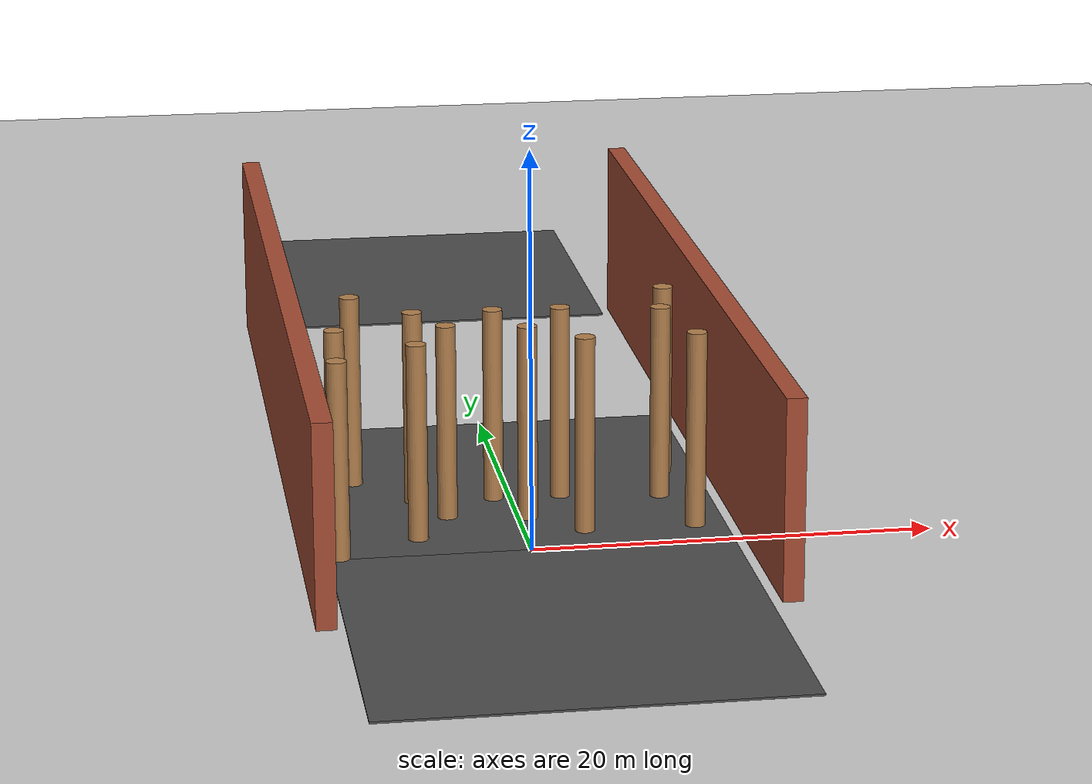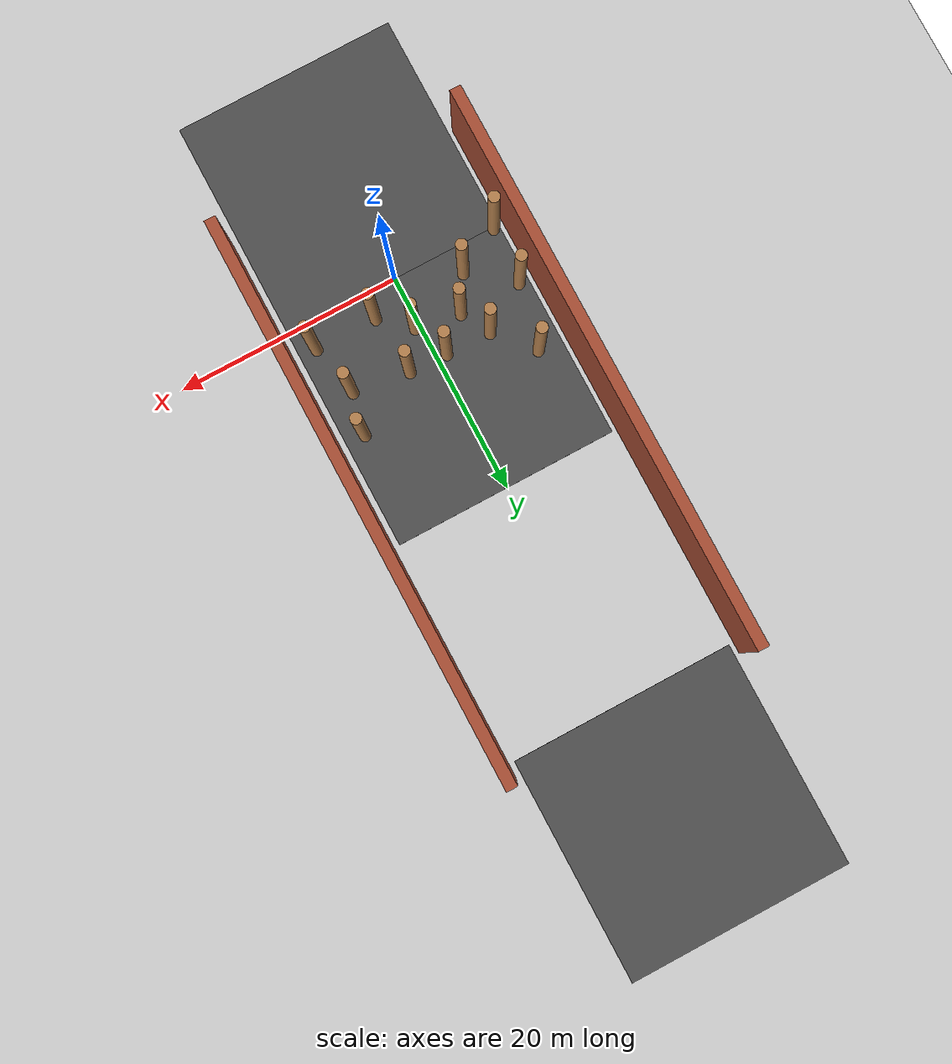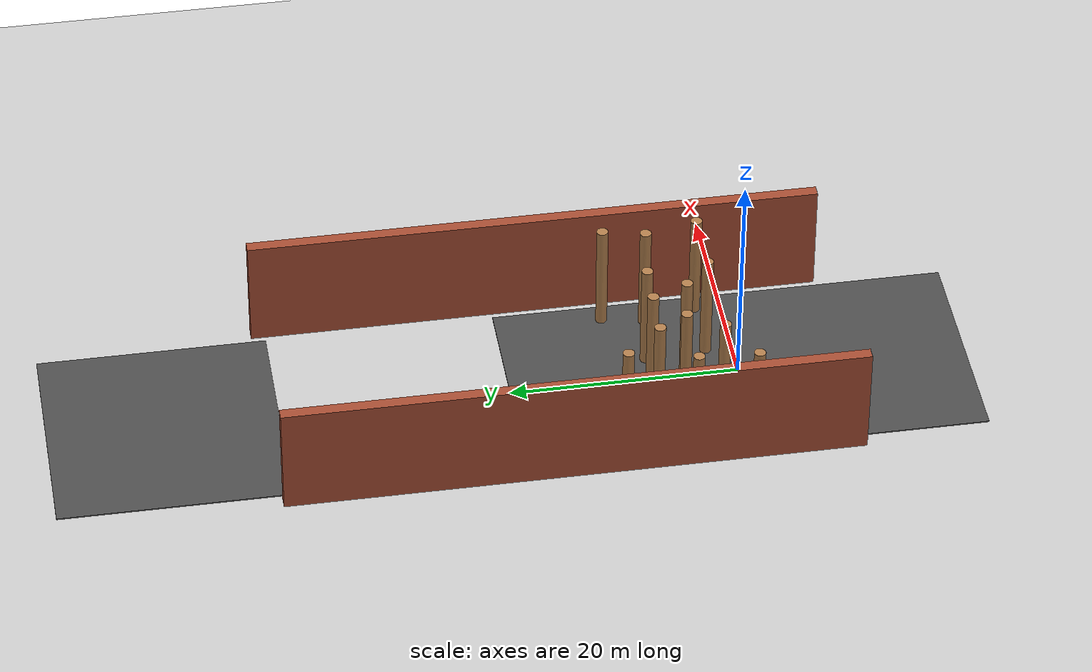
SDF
<sdf version="1.6">
 <world name="default">
  <model name="ground_plane">
   <static>1</static>
   <link name="link">
    <collision name="collision">
     <geometry><plane><normal>0 0 1</normal><size>100 100</size></plane></geometry>
     <surface><friction><ode><mu>100</mu><mu2>50</mu2></ode></friction></surface>
    </collision>
    <visual name="visual">
     <cast_shadows>0</cast_shadows>
     <geometry><plane><normal>0 0 1</normal><size>100 100</size></plane></geometry>
     <material>
      <script><uri>file://media/materials/scripts/gazebo.material</uri><name>Gazebo/Grey</name></script>
     </material>
    </visual>
   </link>
  </model>
  <model name="asphalt_plane_1">
   <static>1</static>
   <link name="link">
    <collision name="collision"><geometry><box><size>20 20 0.1</size></box></geometry></collision>
    <visual name="visual">
     <cast_shadows>0</cast_shadows>
     <geometry><box><size>20 20 0.1</size></box></geometry>
     <material>
      <script>
       <uri>model://asphalt_plane/materials/scripts</uri>
       <uri>model://asphalt_plane/materials/textures</uri>
       <name>vrc/asphalt</name>
      </script>
     </material>
    </visual>
   </link>
   <pose>0.098004 9.97829 0 0 -0 0</pose>
  </model>
  <model name="asphalt_plane_3">
   <static>1</static>
   <link name="link">
    <collision name="collision"><geometry><box><size>20 20 0.1</size></box></geometry></collision>
    <visual name="visual">
     <cast_shadows>0</cast_shadows>
     <geometry><box><size>20 20 0.1</size></box></geometry>
     <material>
      <script>
       <uri>model://asphalt_plane/materials/scripts</uri>
       <uri>model://asphalt_plane/materials/textures</uri>
       <name>vrc/asphalt</name>
      </script>
     </material>
    </visual>
   </link>
   <pose>0.085062 -9.98607 0 0 -0 0</pose>
  </model>
  <model name="train">
   <link name="link_0_clone">
    <pose>-2.21669 -8.91111 0.043478 0 -0 0</pose>
    <inertial>
     <mass>1000</mass>
     <inertia><ixx>0.145833</ixx><ixy>0</ixy><ixz>0</ixz><iyy>0.145833</iyy><iyz>0</iyz><izz>0.125</izz></inertia>
    </inertial>
    <visual name="visual">
     <pose>0 0 4.5 0 -0 0</pose>
     <geometry><cylinder><radius>0.5</radius><length>10</length></cylinder></geometry>
     <material>
      <lighting>1</lighting>
      <script><uri>file://media/materials/scripts/gazebo.material</uri><name>Gazebo/WoodFloor</name></script>
      <ambient>0.3 0.3 0.3 1</ambient>
      <diffuse>0.7 0.7 0.7 1</diffuse>
      <specular>0.01 0.01 0.01 1</specular>
      <emissive>0 0 0 1</emissive>
      <shader type="vertex"><normal_map>__default__</normal_map></shader>
     </material>
    </visual>
    <collision name="collision">
     <pose>0 0 4.5 0 -0 0</pose>
     <geometry><cylinder><radius>0.5</radius><length>10</length></cylinder></geometry>
     <surface>
      <friction>
       <ode><mu>1</mu><mu2>1</mu2><fdir1>0 0 0</fdir1><slip1>0</slip1><slip2>0</slip2></ode>
       <torsional>
        <coefficient>1</coefficient>
        <patch_radius>0</patch_radius>
        <surface_radius>0</surface_radius>
        <use_patch_radius>1</use_patch_radius>
        <ode><slip>0</slip></ode>
       </torsional>
      </friction>
      <bounce><restitution_coefficient>0</restitution_coefficient><threshold>1e+06</threshold></bounce>
      <contact>
       <collide_without_contact>0</collide_without_contact>
       <collide_without_contact_bitmask>1</collide_without_contact_bitmask>
       <collide_bitmask>1</collide_bitmask>
       <ode>
        <soft_cfm>0</soft_cfm>
        <soft_erp>0.2</soft_erp>
        <kp>1e+13</kp>
        <kd>1</kd>
        <max_vel>0.01</max_vel>
        <min_depth>0</min_depth>
       </ode>
       <bullet>
        <split_impulse>1</split_impulse>
        <split_impulse_penetration_threshold>-0.01</split_impulse_penetration_threshold>
        <soft_cfm>0</soft_cfm>
        <soft_erp>0.2</soft_erp>
        <kp>1e+13</kp>
        <kd>1</kd>
       </bullet>
      </contact>
     </surface>
    </collision>
   </link>
   <link name="link_0_clone_0">
    <pose>1.74011 -9.63468 0.043478 0 -0 0</pose>
    <inertial>
     <mass>1000</mass>
     <inertia><ixx>0.145833</ixx><ixy>0</ixy><ixz>0</ixz><iyy>0.145833</iyy><iyz>0</iyz><izz>0.125</izz></inertia>
    </inertial>
    <visual name="visual">
     <pose>0 0 4.5 0 -0 0</pose>
     <geometry><cylinder><radius>0.5</radius><length>10</length></cylinder></geometry>
     <material>
      <lighting>1</lighting>
      <script><uri>file://media/materials/scripts/gazebo.material</uri><name>Gazebo/WoodFloor</name></script>
      <ambient>0.3 0.3 0.3 1</ambient>
      <diffuse>0.7 0.7 0.7 1</diffuse>
      <specular>0.01 0.01 0.01 1</specular>
      <emissive>0 0 0 1</emissive>
      <shader type="vertex"><normal_map>__default__</normal_map></shader>
     </material>
    </visual>
    <collision name="collision">
     <pose>0 0 4.5 0 -0 0</pose>
     <geometry><cylinder><radius>0.5</radius><length>10</length></cylinder></geometry>
     <surface>
      <friction>
       <ode><mu>1</mu><mu2>1</mu2><fdir1>0 0 0</fdir1><slip1>0</slip1><slip2>0</slip2></ode>
       <torsional>
        <coefficient>1</coefficient>
        <patch_radius>0</patch_radius>
        <surface_radius>0</surface_radius>
        <use_patch_radius>1</use_patch_radius>
        <ode><slip>0</slip></ode>
       </torsional>
      </friction>
      <bounce><restitution_coefficient>0</restitution_coefficient><threshold>1e+06</threshold></bounce>
      <contact>
       <collide_without_contact>0</collide_without_contact>
       <collide_without_contact_bitmask>1</collide_without_contact_bitmask>
       <collide_bitmask>1</collide_bitmask>
       <ode>
        <soft_cfm>0</soft_cfm>
        <soft_erp>0.2</soft_erp>
        <kp>1e+13</kp>
        <kd>1</kd>
        <max_vel>0.01</max_vel>
        <min_depth>0</min_depth>
       </ode>
       <bullet>
        <split_impulse>1</split_impulse>
        <split_impulse_penetration_threshold>-0.01</split_impulse_penetration_threshold>
        <soft_cfm>0</soft_cfm>
        <soft_erp>0.2</soft_erp>
        <kp>1e+13</kp>
        <kd>1</kd>
       </bullet>
      </contact>
     </surface>
    </collision>
   </link>
   <link name="link_0_clone_0_clone_0">
    <pose>0.430305 -6.46355 0.043478 0 -0 0</pose>
    <inertial>
     <mass>1000</mass>
     <inertia><ixx>0.145833</ixx><ixy>0</ixy><ixz>0</ixz><iyy>0.145833</iyy><iyz>0</iyz><izz>0.125</izz></inertia>
    </inertial>
    <visual name="visual">
     <pose>0 0 4.5 0 -0 0</pose>
     <geometry><cylinder><radius>0.5</radius><length>10</length></cylinder></geometry>
     <material>
      <lighting>1</lighting>
      <script><uri>file://media/materials/scripts/gazebo.material</uri><name>Gazebo/WoodFloor</name></script>
      <ambient>0.3 0.3 0.3 1</ambient>
      <diffuse>0.7 0.7 0.7 1</diffuse>
      <specular>0.01 0.01 0.01 1</specular>
      <emissive>0 0 0 1</emissive>
      <shader type="vertex"><normal_map>__default__</normal_map></shader>
     </material>
    </visual>
    <collision name="collision">
     <pose>0 0 4.5 0 -0 0</pose>
     <geometry><cylinder><radius>0.5</radius><length>10</length></cylinder></geometry>
     <surface>
      <friction>
       <ode><mu>1</mu><mu2>1</mu2><fdir1>0 0 0</fdir1><slip1>0</slip1><slip2>0</slip2></ode>
       <torsional>
        <coefficient>1</coefficient>
        <patch_radius>0</patch_radius>
        <surface_radius>0</surface_radius>
        <use_patch_radius>1</use_patch_radius>
        <ode><slip>0</slip></ode>
       </torsional>
      </friction>
      <bounce><restitution_coefficient>0</restitution_coefficient><threshold>1e+06</threshold></bounce>
      <contact>
       <collide_without_contact>0</collide_without_contact>
       <collide_without_contact_bitmask>1</collide_without_contact_bitmask>
       <collide_bitmask>1</collide_bitmask>
       <ode>
        <soft_cfm>0</soft_cfm>
        <soft_erp>0.2</soft_erp>
        <kp>1e+13</kp>
        <kd>1</kd>
        <max_vel>0.01</max_vel>
        <min_depth>0</min_depth>
       </ode>
       <bullet>
        <split_impulse>1</split_impulse>
        <split_impulse_penetration_threshold>-0.01</split_impulse_penetration_threshold>
        <soft_cfm>0</soft_cfm>
        <soft_erp>0.2</soft_erp>
        <kp>1e+13</kp>
        <kd>1</kd>
       </bullet>
      </contact>
     </surface>
    </collision>
   </link>
   <link name="link_0_clone_0_clone_1">
    <pose>-3.60082 -6.33939 0.043478 0 -0 0</pose>
    <inertial>
     <mass>1000</mass>
     <inertia><ixx>0.145833</ixx><ixy>0</ixy><ixz>0</ixz><iyy>0.145833</iyy><iyz>0</iyz><izz>0.125</izz></inertia>
    </inertial>
    <visual name="visual">
     <pose>0 0 4.5 0 -0 0</pose>
     <geometry><cylinder><radius>0.5</radius><length>10</length></cylinder></geometry>
     <material>
      <lighting>1</lighting>
      <script><uri>file://media/materials/scripts/gazebo.material</uri><name>Gazebo/WoodFloor</name></script>
      <ambient>0.3 0.3 0.3 1</ambient>
      <diffuse>0.7 0.7 0.7 1</diffuse>
      <specular>0.01 0.01 0.01 1</specular>
      <emissive>0 0 0 1</emissive>
      <shader type="vertex"><normal_map>__default__</normal_map></shader>
     </material>
    </visual>
    <collision name="collision">
     <pose>0 0 4.5 0 -0 0</pose>
     <geometry><cylinder><radius>0.5</radius><length>10</length></cylinder></geometry>
     <surface>
      <friction>
       <ode><mu>1</mu><mu2>1</mu2><fdir1>0 0 0</fdir1><slip1>0</slip1><slip2>0</slip2></ode>
       <torsional>
        <coefficient>1</coefficient>
        <patch_radius>0</patch_radius>
        <surface_radius>0</surface_radius>
        <use_patch_radius>1</use_patch_radius>
        <ode><slip>0</slip></ode>
       </torsional>
      </friction>
      <bounce><restitution_coefficient>0</restitution_coefficient><threshold>1e+06</threshold></bounce>
      <contact>
       <collide_without_contact>0</collide_without_contact>
       <collide_without_contact_bitmask>1</collide_without_contact_bitmask>
       <collide_bitmask>1</collide_bitmask>
       <ode>
        <soft_cfm>0</soft_cfm>
        <soft_erp>0.2</soft_erp>
        <kp>1e+13</kp>
        <kd>1</kd>
        <max_vel>0.01</max_vel>
        <min_depth>0</min_depth>
       </ode>
       <bullet>
        <split_impulse>1</split_impulse>
        <split_impulse_penetration_threshold>-0.01</split_impulse_penetration_threshold>
        <soft_cfm>0</soft_cfm>
        <soft_erp>0.2</soft_erp>
        <kp>1e+13</kp>
        <kd>1</kd>
       </bullet>
      </contact>
     </surface>
    </collision>
   </link>
   <link name="link_0_clone_0_clone_10">
    <pose>-4.01384 -11.8845 0.043478 0 -0 0</pose>
    <inertial>
     <mass>1000</mass>
     <inertia><ixx>0.145833</ixx><ixy>0</ixy><ixz>0</ixz><iyy>0.145833</iyy><iyz>0</iyz><izz>0.125</izz></inertia>
    </inertial>
    <visual name="visual">
     <pose>0 0 4.5 0 -0 0</pose>
     <geometry><cylinder><radius>0.5</radius><length>10</length></cylinder></geometry>
     <material>
      <lighting>1</lighting>
      <script><uri>file://media/materials/scripts/gazebo.material</uri><name>Gazebo/WoodFloor</name></script>
      <ambient>0.3 0.3 0.3 1</ambient>
      <diffuse>0.7 0.7 0.7 1</diffuse>
      <specular>0.01 0.01 0.01 1</specular>
      <emissive>0 0 0 1</emissive>
      <shader type="vertex"><normal_map>__default__</normal_map></shader>
     </material>
    </visual>
    <collision name="collision">
     <pose>0 0 4.5 0 -0 0</pose>
     <geometry><cylinder><radius>0.5</radius><length>10</length></cylinder></geometry>
     <surface>
      <friction>
       <ode><mu>1</mu><mu2>1</mu2><fdir1>0 0 0</fdir1><slip1>0</slip1><slip2>0</slip2></ode>
       <torsional>
        <coefficient>1</coefficient>
        <patch_radius>0</patch_radius>
        <surface_radius>0</surface_radius>
        <use_patch_radius>1</use_patch_radius>
        <ode><slip>0</slip></ode>
       </torsional>
      </friction>
      <bounce><restitution_coefficient>0</restitution_coefficient><threshold>1e+06</threshold></bounce>
      <contact>
       <collide_without_contact>0</collide_without_contact>
       <collide_without_contact_bitmask>1</collide_without_contact_bitmask>
       <collide_bitmask>1</collide_bitmask>
       <ode>
        <soft_cfm>0</soft_cfm>
        <soft_erp>0.2</soft_erp>
        <kp>1e+13</kp>
        <kd>1</kd>
        <max_vel>0.01</max_vel>
        <min_depth>0</min_depth>
       </ode>
       <bullet>
        <split_impulse>1</split_impulse>
        <split_impulse_penetration_threshold>-0.01</split_impulse_penetration_threshold>
        <soft_cfm>0</soft_cfm>
        <soft_erp>0.2</soft_erp>
        <kp>1e+13</kp>
        <kd>1</kd>
       </bullet>
      </contact>
     </surface>
    </collision>
   </link>
   <link name="link_0_clone_0_clone_11">
    <pose>4.2784 -11.9007 0.043478 0 -0 0</pose>
    <inertial>
     <mass>1000</mass>
     <inertia><ixx>0.145833</ixx><ixy>0</ixy><ixz>0</ixz><iyy>0.145833</iyy><iyz>0</iyz><izz>0.125</izz></inertia>
    </inertial>
    <visual name="visual">
     <pose>0 0 4.5 0 -0 0</pose>
     <geometry><cylinder><radius>0.5</radius><length>10</length></cylinder></geometry>
     <material>
      <lighting>1</lighting>
      <script><uri>file://media/materials/scripts/gazebo.material</uri><name>Gazebo/WoodFloor</name></script>
      <ambient>0.3 0.3 0.3 1</ambient>
      <diffuse>0.7 0.7 0.7 1</diffuse>
      <specular>0.01 0.01 0.01 1</specular>
      <emissive>0 0 0 1</emissive>
      <shader type="vertex"><normal_map>__default__</normal_map></shader>
     </material>
    </visual>
    <collision name="collision">
     <pose>0 0 4.5 0 -0 0</pose>
     <geometry><cylinder><radius>0.5</radius><length>10</length></cylinder></geometry>
     <surface>
      <friction>
       <ode><mu>1</mu><mu2>1</mu2><fdir1>0 0 0</fdir1><slip1>0</slip1><slip2>0</slip2></ode>
       <torsional>
        <coefficient>1</coefficient>
        <patch_radius>0</patch_radius>
        <surface_radius>0</surface_radius>
        <use_patch_radius>1</use_patch_radius>
        <ode><slip>0</slip></ode>
       </torsional>
      </friction>
      <bounce><restitution_coefficient>0</restitution_coefficient><threshold>1e+06</threshold></bounce>
      <contact>
       <collide_without_contact>0</collide_without_contact>
       <collide_without_contact_bitmask>1</collide_without_contact_bitmask>
       <collide_bitmask>1</collide_bitmask>
       <ode>
        <soft_cfm>0</soft_cfm>
        <soft_erp>0.2</soft_erp>
        <kp>1e+13</kp>
        <kd>1</kd>
        <max_vel>0.01</max_vel>
        <min_depth>0</min_depth>
       </ode>
       <bullet>
        <split_impulse>1</split_impulse>
        <split_impulse_penetration_threshold>-0.01</split_impulse_penetration_threshold>
        <soft_cfm>0</soft_cfm>
        <soft_erp>0.2</soft_erp>
        <kp>1e+13</kp>
        <kd>1</kd>
       </bullet>
      </contact>
     </surface>
    </collision>
   </link>
   <link name="link_0_clone_0_clone_11_clone">
    <pose>9.83342 -11.9339 0.043478 0 -0 3e-06</pose>
    <inertial>
     <mass>1000</mass>
     <inertia><ixx>0.145833</ixx><ixy>0</ixy><ixz>0</ixz><iyy>0.145833</iyy><iyz>0</iyz><izz>0.125</izz></inertia>
    </inertial>
    <visual name="visual">
     <pose>0 0 4.5 0 -0 0</pose>
     <geometry><cylinder><radius>0.5</radius><length>10</length></cylinder></geometry>
     <material>
      <lighting>1</lighting>
      <script><uri>file://media/materials/scripts/gazebo.material</uri><name>Gazebo/WoodFloor</name></script>
      <ambient>0.3 0.3 0.3 1</ambient>
      <diffuse>0.7 0.7 0.7 1</diffuse>
      <specular>0.01 0.01 0.01 1</specular>
      <emissive>0 0 0 1</emissive>
      <shader type="vertex"><normal_map>__default__</normal_map></shader>
     </material>
    </visual>
    <collision name="collision">
     <pose>0 0 4.5 0 -0 0</pose>
     <geometry><cylinder><radius>0.5</radius><length>10</length></cylinder></geometry>
     <surface>
      <friction>
       <ode><mu>1</mu><mu2>1</mu2><fdir1>0 0 0</fdir1><slip1>0</slip1><slip2>0</slip2></ode>
       <torsional>
        <coefficient>1</coefficient>
        <patch_radius>0</patch_radius>
        <surface_radius>0</surface_radius>
        <use_patch_radius>1</use_patch_radius>
        <ode><slip>0</slip></ode>
       </torsional>
      </friction>
      <bounce><restitution_coefficient>0</restitution_coefficient><threshold>1e+06</threshold></bounce>
      <contact>
       <collide_without_contact>0</collide_without_contact>
       <collide_without_contact_bitmask>1</collide_without_contact_bitmask>
       <collide_bitmask>1</collide_bitmask>
       <ode>
        <soft_cfm>0</soft_cfm>
        <soft_erp>0.2</soft_erp>
        <kp>1e+13</kp>
        <kd>1</kd>
        <max_vel>0.01</max_vel>
        <min_depth>0</min_depth>
       </ode>
       <bullet>
        <split_impulse>1</split_impulse>
        <split_impulse_penetration_threshold>-0.01</split_impulse_penetration_threshold>
        <soft_cfm>0</soft_cfm>
        <soft_erp>0.2</soft_erp>
        <kp>1e+13</kp>
        <kd>1</kd>
       </bullet>
      </contact>
     </surface>
    </collision>
   </link>
   <link name="link_0_clone_0_clone_11_clone_0">
    <pose>8.85267 -7.29517 0.043478 0 -0 3e-06</pose>
    <inertial>
     <mass>1000</mass>
     <inertia><ixx>0.145833</ixx><ixy>0</ixy><ixz>0</ixz><iyy>0.145833</iyy><iyz>0</iyz><izz>0.125</izz></inertia>
    </inertial>
    <visual name="visual">
     <pose>0 0 4.5 0 -0 0</pose>
     <geometry><cylinder><radius>0.5</radius><length>10</length></cylinder></geometry>
     <material>
      <lighting>1</lighting>
      <script><uri>file://media/materials/scripts/gazebo.material</uri><name>Gazebo/WoodFloor</name></script>
      <ambient>0.3 0.3 0.3 1</ambient>
      <diffuse>0.7 0.7 0.7 1</diffuse>
      <specular>0.01 0.01 0.01 1</specular>
      <emissive>0 0 0 1</emissive>
      <shader type="vertex"><normal_map>__default__</normal_map></shader>
     </material>
    </visual>
    <collision name="collision">
     <pose>0 0 4.5 0 -0 0</pose>
     <geometry><cylinder><radius>0.5</radius><length>10</length></cylinder></geometry>
     <surface>
      <friction>
       <ode><mu>1</mu><mu2>1</mu2><fdir1>0 0 0</fdir1><slip1>0</slip1><slip2>0</slip2></ode>
       <torsional>
        <coefficient>1</coefficient>
        <patch_radius>0</patch_radius>
        <surface_radius>0</surface_radius>
        <use_patch_radius>1</use_patch_radius>
        <ode><slip>0</slip></ode>
       </torsional>
      </friction>
      <bounce><restitution_coefficient>0</restitution_coefficient><threshold>1e+06</threshold></bounce>
      <contact>
       <collide_without_contact>0</collide_without_contact>
       <collide_without_contact_bitmask>1</collide_without_contact_bitmask>
       <collide_bitmask>1</collide_bitmask>
       <ode>
        <soft_cfm>0</soft_cfm>
        <soft_erp>0.2</soft_erp>
        <kp>1e+13</kp>
        <kd>1</kd>
        <max_vel>0.01</max_vel>
        <min_depth>0</min_depth>
       </ode>
       <bullet>
        <split_impulse>1</split_impulse>
        <split_impulse_penetration_threshold>-0.01</split_impulse_penetration_threshold>
        <soft_cfm>0</soft_cfm>
        <soft_erp>0.2</soft_erp>
        <kp>1e+13</kp>
        <kd>1</kd>
       </bullet>
      </contact>
     </surface>
    </collision>
   </link>
   <link name="link_0_clone_0_clone_11_clone_1">
    <pose>9.63017 -3.63715 0.043478 0 -0 3e-06</pose>
    <inertial>
     <mass>1000</mass>
     <inertia><ixx>0.145833</ixx><ixy>0</ixy><ixz>0</ixz><iyy>0.145833</iyy><iyz>0</iyz><izz>0.125</izz></inertia>
    </inertial>
    <visual name="visual">
     <pose>0 0 4.5 0 -0 0</pose>
     <geometry><cylinder><radius>0.5</radius><length>10</length></cylinder></geometry>
     <material>
      <lighting>1</lighting>
      <script><uri>file://media/materials/scripts/gazebo.material</uri><name>Gazebo/WoodFloor</name></script>
      <ambient>0.3 0.3 0.3 1</ambient>
      <diffuse>0.7 0.7 0.7 1</diffuse>
      <specular>0.01 0.01 0.01 1</specular>
      <emissive>0 0 0 1</emissive>
      <shader type="vertex"><normal_map>__default__</normal_map></shader>
     </material>
    </visual>
    <collision name="collision">
     <pose>0 0 4.5 0 -0 0</pose>
     <geometry><cylinder><radius>0.5</radius><length>10</length></cylinder></geometry>
     <surface>
      <friction>
       <ode><mu>1</mu><mu2>1</mu2><fdir1>0 0 0</fdir1><slip1>0</slip1><slip2>0</slip2></ode>
       <torsional>
        <coefficient>1</coefficient>
        <patch_radius>0</patch_radius>
        <surface_radius>0</surface_radius>
        <use_patch_radius>1</use_patch_radius>
        <ode><slip>0</slip></ode>
       </torsional>
      </friction>
      <bounce><restitution_coefficient>0</restitution_coefficient><threshold>1e+06</threshold></bounce>
      <contact>
       <collide_without_contact>0</collide_without_contact>
       <collide_without_contact_bitmask>1</collide_without_contact_bitmask>
       <collide_bitmask>1</collide_bitmask>
       <ode>
        <soft_cfm>0</soft_cfm>
        <soft_erp>0.2</soft_erp>
        <kp>1e+13</kp>
        <kd>1</kd>
        <max_vel>0.01</max_vel>
        <min_depth>0</min_depth>
       </ode>
       <bullet>
        <split_impulse>1</split_impulse>
        <split_impulse_penetration_threshold>-0.01</split_impulse_penetration_threshold>
        <soft_cfm>0</soft_cfm>
        <soft_erp>0.2</soft_erp>
        <kp>1e+13</kp>
        <kd>1</kd>
       </bullet>
      </contact>
     </surface>
    </collision>
   </link>
   <link name="link_0_clone_0_clone_11_clone_11">
    <pose>-7.74072 -8.92178 0.043478 0 -0 3e-06</pose>
    <inertial>
     <mass>1000</mass>
     <inertia><ixx>0.145833</ixx><ixy>0</ixy><ixz>0</ixz><iyy>0.145833</iyy><iyz>0</iyz><izz>0.125</izz></inertia>
    </inertial>
    <visual name="visual">
     <pose>0 0 4.5 0 -0 0</pose>
     <geometry><cylinder><radius>0.5</radius><length>10</length></cylinder></geometry>
     <material>
      <lighting>1</lighting>
      <script><uri>file://media/materials/scripts/gazebo.material</uri><name>Gazebo/WoodFloor</name></script>
      <ambient>0.3 0.3 0.3 1</ambient>
      <diffuse>0.7 0.7 0.7 1</diffuse>
      <specular>0.01 0.01 0.01 1</specular>
      <emissive>0 0 0 1</emissive>
      <shader type="vertex"><normal_map>__default__</normal_map></shader>
     </material>
    </visual>
    <collision name="collision">
     <pose>0 0 4.5 0 -0 0</pose>
     <geometry><cylinder><radius>0.5</radius><length>10</length></cylinder></geometry>
     <surface>
      <friction>
       <ode><mu>1</mu><mu2>1</mu2><fdir1>0 0 0</fdir1><slip1>0</slip1><slip2>0</slip2></ode>
       <torsional>
        <coefficient>1</coefficient>
        <patch_radius>0</patch_radius>
        <surface_radius>0</surface_radius>
        <use_patch_radius>1</use_patch_radius>
        <ode><slip>0</slip></ode>
       </torsional>
      </friction>
      <bounce><restitution_coefficient>0</restitution_coefficient><threshold>1e+06</threshold></bounce>
      <contact>
       <collide_without_contact>0</collide_without_contact>
       <collide_without_contact_bitmask>1</collide_without_contact_bitmask>
       <collide_bitmask>1</collide_bitmask>
       <ode>
        <soft_cfm>0</soft_cfm>
        <soft_erp>0.2</soft_erp>
        <kp>1e+13</kp>
        <kd>1</kd>
        <max_vel>0.01</max_vel>
        <min_depth>0</min_depth>
       </ode>
       <bullet>
        <split_impulse>1</split_impulse>
        <split_impulse_penetration_threshold>-0.01</split_impulse_penetration_threshold>
        <soft_cfm>0</soft_cfm>
        <soft_erp>0.2</soft_erp>
        <kp>1e+13</kp>
        <kd>1</kd>
       </bullet>
      </contact>
     </surface>
    </collision>
   </link>
   <link name="link_0_clone_0_clone_11_clone_13">
    <pose>-8.06919 -14.0479 0.043478 0 -0 3e-06</pose>
    <inertial>
     <mass>1000</mass>
     <inertia><ixx>0.145833</ixx><ixy>0</ixy><ixz>0</ixz><iyy>0.145833</iyy><iyz>0</iyz><izz>0.125</izz></inertia>
    </inertial>
    <visual name="visual">
     <pose>0 0 4.5 0 -0 0</pose>
     <geometry><cylinder><radius>0.5</radius><length>10</length></cylinder></geometry>
     <material>
      <lighting>1</lighting>
      <script><uri>file://media/materials/scripts/gazebo.material</uri><name>Gazebo/WoodFloor</name></script>
      <ambient>0.3 0.3 0.3 1</ambient>
      <diffuse>0.7 0.7 0.7 1</diffuse>
      <specular>0.01 0.01 0.01 1</specular>
      <emissive>0 0 0 1</emissive>
      <shader type="vertex"><normal_map>__default__</normal_map></shader>
     </material>
    </visual>
    <collision name="collision">
     <pose>0 0 4.5 0 -0 0</pose>
     <geometry><cylinder><radius>0.5</radius><length>10</length></cylinder></geometry>
     <surface>
      <friction>
       <ode><mu>1</mu><mu2>1</mu2><fdir1>0 0 0</fdir1><slip1>0</slip1><slip2>0</slip2></ode>
       <torsional>
        <coefficient>1</coefficient>
        <patch_radius>0</patch_radius>
        <surface_radius>0</surface_radius>
        <use_patch_radius>1</use_patch_radius>
        <ode><slip>0</slip></ode>
       </torsional>
      </friction>
      <bounce><restitution_coefficient>0</restitution_coefficient><threshold>1e+06</threshold></bounce>
      <contact>
       <collide_without_contact>0</collide_without_contact>
       <collide_without_contact_bitmask>1</collide_without_contact_bitmask>
       <collide_bitmask>1</collide_bitmask>
       <ode>
        <soft_cfm>0</soft_cfm>
        <soft_erp>0.2</soft_erp>
        <kp>1e+13</kp>
        <kd>1</kd>
        <max_vel>0.01</max_vel>
        <min_depth>0</min_depth>
       </ode>
       <bullet>
        <split_impulse>1</split_impulse>
        <split_impulse_penetration_threshold>-0.01</split_impulse_penetration_threshold>
        <soft_cfm>0</soft_cfm>
        <soft_erp>0.2</soft_erp>
        <kp>1e+13</kp>
        <kd>1</kd>
       </bullet>
      </contact>
     </surface>
    </collision>
   </link>
   <link name="link_0_clone_0_clone_11_clone_9">
    <pose>-6.44972 -3.138 0.043478 0 -0 3e-06</pose>
    <inertial>
     <mass>1000</mass>
     <inertia><ixx>0.145833</ixx><ixy>0</ixy><ixz>0</ixz><iyy>0.145833</iyy><iyz>0</iyz><izz>0.125</izz></inertia>
    </inertial>
    <visual name="visual">
     <pose>0 0 4.5 0 -0 0</pose>
     <geometry><cylinder><radius>0.5</radius><length>10</length></cylinder></geometry>
     <material>
      <lighting>1</lighting>
      <script><uri>file://media/materials/scripts/gazebo.material</uri><name>Gazebo/WoodFloor</name></script>
      <ambient>0.3 0.3 0.3 1</ambient>
      <diffuse>0.7 0.7 0.7 1</diffuse>
      <specular>0.01 0.01 0.01 1</specular>
      <emissive>0 0 0 1</emissive>
      <shader type="vertex"><normal_map>__default__</normal_map></shader>
     </material>
    </visual>
    <collision name="collision">
     <pose>0 0 4.5 0 -0 0</pose>
     <geometry><cylinder><radius>0.5</radius><length>10</length></cylinder></geometry>
     <surface>
      <friction>
       <ode><mu>1</mu><mu2>1</mu2><fdir1>0 0 0</fdir1><slip1>0</slip1><slip2>0</slip2></ode>
       <torsional>
        <coefficient>1</coefficient>
        <patch_radius>0</patch_radius>
        <surface_radius>0</surface_radius>
        <use_patch_radius>1</use_patch_radius>
        <ode><slip>0</slip></ode>
       </torsional>
      </friction>
      <bounce><restitution_coefficient>0</restitution_coefficient><threshold>1e+06</threshold></bounce>
      <contact>
       <collide_without_contact>0</collide_without_contact>
       <collide_without_contact_bitmask>1</collide_without_contact_bitmask>
       <collide_bitmask>1</collide_bitmask>
       <ode>
        <soft_cfm>0</soft_cfm>
        <soft_erp>0.2</soft_erp>
        <kp>1e+13</kp>
        <kd>1</kd>
        <max_vel>0.01</max_vel>
        <min_depth>0</min_depth>
       </ode>
       <bullet>
        <split_impulse>1</split_impulse>
        <split_impulse_penetration_threshold>-0.01</split_impulse_penetration_threshold>
        <soft_cfm>0</soft_cfm>
        <soft_erp>0.2</soft_erp>
        <kp>1e+13</kp>
        <kd>1</kd>
       </bullet>
      </contact>
     </surface>
    </collision>
   </link>
   <link name="link_0_clone_0_clone_9">
    <pose>3.84582 -6.55996 0.043478 0 -0 0</pose>
    <inertial>
     <mass>1000</mass>
     <inertia><ixx>0.145833</ixx><ixy>0</ixy><ixz>0</ixz><iyy>0.145833</iyy><iyz>0</iyz><izz>0.125</izz></inertia>
    </inertial>
    <visual name="visual">
     <pose>0 0 4.5 0 -0 0</pose>
     <geometry><cylinder><radius>0.5</radius><length>10</length></cylinder></geometry>
     <material>
      <lighting>1</lighting>
      <script><uri>file://media/materials/scripts/gazebo.material</uri><name>Gazebo/WoodFloor</name></script>
      <ambient>0.3 0.3 0.3 1</ambient>
      <diffuse>0.7 0.7 0.7 1</diffuse>
      <specular>0.01 0.01 0.01 1</specular>
      <emissive>0 0 0 1</emissive>
      <shader type="vertex"><normal_map>__default__</normal_map></shader>
     </material>
    </visual>
    <collision name="collision">
     <pose>0 0 4.5 0 -0 0</pose>
     <geometry><cylinder><radius>0.5</radius><length>10</length></cylinder></geometry>
     <surface>
      <friction>
       <ode><mu>1</mu><mu2>1</mu2><fdir1>0 0 0</fdir1><slip1>0</slip1><slip2>0</slip2></ode>
       <torsional>
        <coefficient>1</coefficient>
        <patch_radius>0</patch_radius>
        <surface_radius>0</surface_radius>
        <use_patch_radius>1</use_patch_radius>
        <ode><slip>0</slip></ode>
       </torsional>
      </friction>
      <bounce><restitution_coefficient>0</restitution_coefficient><threshold>1e+06</threshold></bounce>
      <contact>
       <collide_without_contact>0</collide_without_contact>
       <collide_without_contact_bitmask>1</collide_without_contact_bitmask>
       <collide_bitmask>1</collide_bitmask>
       <ode>
        <soft_cfm>0</soft_cfm>
        <soft_erp>0.2</soft_erp>
        <kp>1e+13</kp>
        <kd>1</kd>
        <max_vel>0.01</max_vel>
        <min_depth>0</min_depth>
       </ode>
       <bullet>
        <split_impulse>1</split_impulse>
        <split_impulse_penetration_threshold>-0.01</split_impulse_penetration_threshold>
        <soft_cfm>0</soft_cfm>
        <soft_erp>0.2</soft_erp>
        <kp>1e+13</kp>
        <kd>1</kd>
       </bullet>
      </contact>
     </surface>
    </collision>
   </link>
   <static>1</static>
   <pose>-1.27394 14.2468 0.506522 0 0 -3e-06</pose>
  </model>
  <model name="walls">
   <link name="link_0_clone">
    <pose>-10.7701 14.8158 5 0 -0 0</pose>
    <inertial>
     <mass>10000</mass>
     <inertia>
      <ixx>0.166667</ixx>
      <ixy>0</ixy>
      <ixz>0</ixz>
      <iyy>0.166667</iyy>
      <iyz>0</iyz>
      <izz>0.166667</izz>
     </inertia>
     <pose>0 0 5 0 -0 0</pose>
    </inertial>
    <visual name="visual">
     <geometry><box><size>1 50 10</size></box></geometry>
     <material>
      <lighting>1</lighting>
      <script><uri>file://media/materials/scripts/gazebo.material</uri><name>Gazebo/Bricks</name></script>
      <ambient>0.3 0.3 0.3 1</ambient>
      <diffuse>0.7 0.7 0.7 1</diffuse>
      <specular>0.01 0.01 0.01 1</specular>
      <emissive>0 0 0 1</emissive>
      <shader type="vertex"><normal_map>__default__</normal_map></shader>
     </material>
    </visual>
    <collision name="collision">
     <geometry><box><size>1 50 10</size></box></geometry>
     <surface>
      <friction>
       <ode><mu>1</mu><mu2>1</mu2><fdir1>0 0 0</fdir1><slip1>0</slip1><slip2>0</slip2></ode>
       <torsional>
        <coefficient>1</coefficient>
        <patch_radius>0</patch_radius>
        <surface_radius>0</surface_radius>
        <use_patch_radius>1</use_patch_radius>
        <ode><slip>0</slip></ode>
       </torsional>
      </friction>
      <bounce><restitution_coefficient>0</restitution_coefficient><threshold>1e+06</threshold></bounce>
      <contact>
       <collide_without_contact>0</collide_without_contact>
       <collide_without_contact_bitmask>1</collide_without_contact_bitmask>
       <collide_bitmask>1</collide_bitmask>
       <ode>
        <soft_cfm>0</soft_cfm>
        <soft_erp>0.2</soft_erp>
        <kp>1e+13</kp>
        <kd>1</kd>
        <max_vel>0.01</max_vel>
        <min_depth>0</min_depth>
       </ode>
       <bullet>
        <split_impulse>1</split_impulse>
        <split_impulse_penetration_threshold>-0.01</split_impulse_penetration_threshold>
        <soft_cfm>0</soft_cfm>
        <soft_erp>0.2</soft_erp>
        <kp>1e+13</kp>
        <kd>1</kd>
       </bullet>
      </contact>
     </surface>
    </collision>
   </link>
   <link name="link_0_clone_clone">
    <pose>11.1264 15.0454 5 0 -0 0</pose>
    <inertial>
     <mass>10000</mass>
     <inertia>
      <ixx>0.166667</ixx>
      <ixy>0</ixy>
      <ixz>0</ixz>
      <iyy>0.166667</iyy>
      <iyz>0</iyz>
      <izz>0.166667</izz>
     </inertia>
     <pose>0 0 5 0 -0 0</pose>
    </inertial>
    <visual name="visual">
     <geometry><box><size>1 50 10</size></box></geometry>
     <material>
      <lighting>1</lighting>
      <script><uri>file://media/materials/scripts/gazebo.material</uri><name>Gazebo/Bricks</name></script>
      <ambient>0.3 0.3 0.3 1</ambient>
      <diffuse>0.7 0.7 0.7 1</diffuse>
      <specular>0.01 0.01 0.01 1</specular>
      <emissive>0 0 0 1</emissive>
      <shader type="vertex"><normal_map>__default__</normal_map></shader>
     </material>
    </visual>
    <collision name="collision">
     <geometry><box><size>1 50 10</size></box></geometry>
     <surface>
      <friction>
       <ode><mu>1</mu><mu2>1</mu2><fdir1>0 0 0</fdir1><slip1>0</slip1><slip2>0</slip2></ode>
       <torsional>
        <coefficient>1</coefficient>
        <patch_radius>0</patch_radius>
        <surface_radius>0</surface_radius>
        <use_patch_radius>1</use_patch_radius>
        <ode><slip>0</slip></ode>
       </torsional>
      </friction>
      <bounce><restitution_coefficient>0</restitution_coefficient><threshold>1e+06</threshold></bounce>
      <contact>
       <collide_without_contact>0</collide_without_contact>
       <collide_without_contact_bitmask>1</collide_without_contact_bitmask>
       <collide_bitmask>1</collide_bitmask>
       <ode>
        <soft_cfm>0</soft_cfm>
        <soft_erp>0.2</soft_erp>
        <kp>1e+13</kp>
        <kd>1</kd>
        <max_vel>0.01</max_vel>
        <min_depth>0</min_depth>
       </ode>
       <bullet>
        <split_impulse>1</split_impulse>
        <split_impulse_penetration_threshold>-0.01</split_impulse_penetration_threshold>
        <soft_cfm>0</soft_cfm>
        <soft_erp>0.2</soft_erp>
        <kp>1e+13</kp>
        <kd>1</kd>
       </bullet>
      </contact>
     </surface>
    </collision>
   </link>
   <static>1</static>
   <pose>-0.021049 1.14706 0 0 -0 0</pose>
  </model>
  <model name="asphalt_plane">
   <link name="link">
    <inertial>
     <mass>1</mass>
     <inertia><ixx>1</ixx><ixy>0</ixy><ixz>0</ixz><iyy>1</iyy><iyz>0</iyz><izz>1</izz></inertia>
    </inertial>
    <visual name="visual">
     <cast_shadows>0</cast_shadows>
     <geometry><box><size>20 20 0.1</size></box></geometry>
     <material>
      <script>
       <uri>model://asphalt_plane/materials/scripts</uri>
       <uri>model://asphalt_plane/materials/textures</uri>
       <name>vrc/asphalt</name>
      </script>
      <ambient>0.5 0.5 0.5 1</ambient>
      <diffuse>0.5 0.5 0.5 1</diffuse>
      <specular>0.2 0.2 0.2 1</specular>
      <emissive>0 0 0 1</emissive>
      <shader type="vertex"><normal_map>__default__</normal_map></shader>
     </material>
    </visual>
    <collision name="collision">
     <geometry><box><size>20 20 0.1</size></box></geometry>
     <surface>
      <friction>
       <ode><mu>1</mu><mu2>1</mu2><fdir1>0 0 0</fdir1><slip1>0</slip1><slip2>0</slip2></ode>
       <torsional>
        <coefficient>1</coefficient>
        <patch_radius>0</patch_radius>
        <surface_radius>0</surface_radius>
        <use_patch_radius>1</use_patch_radius>
        <ode><slip>0</slip></ode>
       </torsional>
      </friction>
      <bounce><restitution_coefficient>0</restitution_coefficient><threshold>1e+06</threshold></bounce>
      <contact>
       <collide_without_contact>0</collide_without_contact>
       <collide_without_contact_bitmask>1</collide_without_contact_bitmask>
       <collide_bitmask>1</collide_bitmask>
       <ode>
        <soft_cfm>0</soft_cfm>
        <soft_erp>0.2</soft_erp>
        <kp>1e+13</kp>
        <kd>1</kd>
        <max_vel>0.01</max_vel>
        <min_depth>0</min_depth>
       </ode>
       <bullet>
        <split_impulse>1</split_impulse>
        <split_impulse_penetration_threshold>-0.01</split_impulse_penetration_threshold>
        <soft_cfm>0</soft_cfm>
        <soft_erp>0.2</soft_erp>
        <kp>1e+13</kp>
        <kd>1</kd>
       </bullet>
      </contact>
     </surface>
    </collision>
   </link>
   <static>1</static>
   <pose>0.110386 49.9949 0 0 -0 0</pose>
  </model>
 </world>
</sdf>
